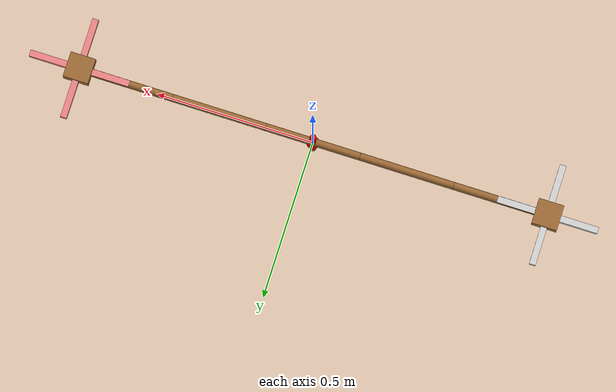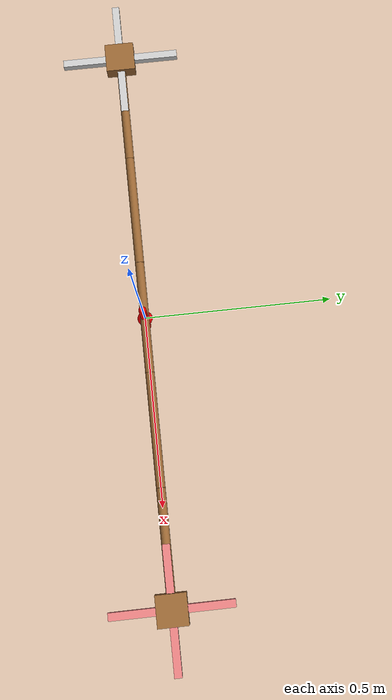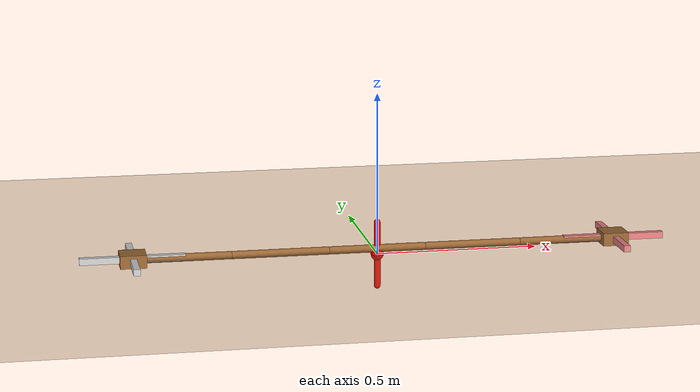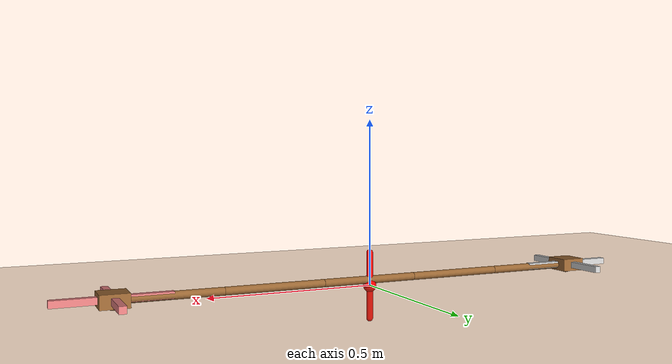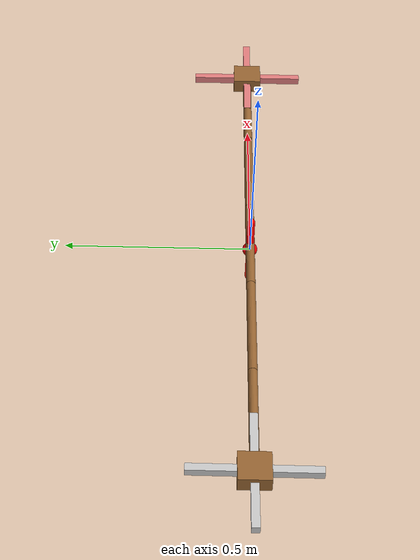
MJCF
<?xml version="1.0" encoding="utf-8"?>
<mujoco model="two_drones_flexible_bar_balljoints">

  <compiler angle="radian"/>

  <option timestep="0.001"
          gravity="0 0 -9.81"
          integrator="implicitfast"
          solver="Newton"
          iterations="50"
          tolerance="1e-9"/>

  <default>
    <joint damping="0.15" limited="false"/>
    <geom contype="0" conaffinity="0" rgba="0.6 0.4 0.2 1"/>
    <site size="0.01" rgba="1 1 0 0.5"/>

    <default class="spring_hinge">
      <!-- Para barra horizontal (alineada con eje X):
           flexión en plano XZ  -> eje Y
           flexión en plano XY  -> eje Z -->
      <joint type="hinge" stiffness="4" damping="0.15" limited="false" armature="0.0001"/>
    </default>
  </default>

  <asset>
    <texture type="skybox" builtin="gradient"
             rgb1="0.85 0.92 1.0" rgb2="0.18 0.28 0.55"
             width="512" height="512"/>
    <texture name="tex_floor" type="2d" builtin="checker"
             rgb1="0.72 0.72 0.72" rgb2="0.88 0.88 0.88"
             width="512" height="512"/>

    <material name="mat_floor"   texture="tex_floor" texrepeat="8 8" reflectance="0.50" shininess="0.4"/>
    <material name="mat_segment" rgba="0.65 0.42 0.18 1" shininess="0.4"/>
    <material name="mat_joint"   rgba="0.92 0.92 0.92 1" shininess="0.7"/>
    <material name="mat_socket"  rgba="0.95 0.75 0.10 1" shininess="1.0"/>
    <material name="MatDroneA"   rgba="0.18 0.18 0.18 1" shininess="0.9"/>
    <material name="MatDroneB"   rgba="0.60 0.10 0.10 1" shininess="0.9"/>
  </asset>

  <worldbody>
    <light name="ambient_light" directional="false"
           pos="0 0 5" dir="0 0 -1"
           diffuse="0.6 0.6 0.6" specular="0.2 0.2 0.2" castshadow="false"/>
    <light name="sun" directional="true"
           pos="2 2 4" dir="-0.5 -0.5 -1"
           diffuse="0.9 0.9 0.85" specular="0.4 0.4 0.4" castshadow="true"/>

    <geom name="floor" type="plane" size="6 6 0.1" material="mat_floor" contype="1" conaffinity="2"/>

    <!-- Máscara de colisión:
         - piso:    contype=1, conaffinity=2
         - sólidos: contype=2, conaffinity=1
         Así, drones y barra colisionan con el piso, pero no entre sí. -->

    <!-- BARRA FLEXIBLE: longitud total = 1.50 m -->
    <body name="seg1" pos="-0.75 0 0.018">
      <joint name="seg1_free" type="free"/>

      <site name="site_bar_A" pos="0 0 0" size="0.01" rgba="1 1 0 1"/>
      <geom name="g_j0" type="sphere" size="0.012" pos="0 0 0"
            material="mat_joint" mass="0.001" contype="2" conaffinity="1"/>
      <geom name="g_seg1" type="cylinder" size="0.012 0.15" pos="0.15 0 0"
            euler="0 1.57079632679 0"
            material="mat_segment" mass="0.10112" contype="2" conaffinity="1"/>
      <geom name="g_j1" type="sphere" size="0.012" pos="0.30 0 0"
            material="mat_joint" mass="0.001" contype="2" conaffinity="1"/>

      <body name="seg2" pos="0.30 0 0">
        <joint name="j12_ry" class="spring_hinge" axis="0 1 0"/>
        <joint name="j12_rz" class="spring_hinge" axis="0 0 1"/>
        <geom name="g_seg2" type="cylinder" size="0.012 0.15" pos="0.15 0 0"
              euler="0 1.57079632679 0"
              material="mat_segment" mass="0.10112" contype="2" conaffinity="1"/>
        <geom name="g_j2" type="sphere" size="0.012" pos="0.30 0 0"
              material="mat_joint" mass="0.001" contype="2" conaffinity="1"/>

        <body name="seg3" pos="0.30 0 0">
          <joint name="j23_ry" class="spring_hinge" axis="0 1 0"/>
          <joint name="j23_rz" class="spring_hinge" axis="0 0 1"/>
          <geom name="g_seg3" type="cylinder" size="0.012 0.15" pos="0.15 0 0"
                euler="0 1.57079632679 0"
                material="mat_segment" mass="0.10112" contype="2" conaffinity="1"/>
          <geom name="g_j3" type="sphere" size="0.012" pos="0.30 0 0"
                material="mat_joint" mass="0.001" contype="2" conaffinity="1"/>

          <body name="seg4" pos="0.30 0 0">
            <joint name="j34_ry" class="spring_hinge" axis="0 1 0"/>
            <joint name="j34_rz" class="spring_hinge" axis="0 0 1"/>
            <geom name="g_seg4" type="cylinder" size="0.012 0.15" pos="0.15 0 0"
                  euler="0 1.57079632679 0"
                  material="mat_segment" mass="0.10112" contype="2" conaffinity="1"/>
            <geom name="g_j4" type="sphere" size="0.012" pos="0.30 0 0"
                  material="mat_joint" mass="0.001" contype="2" conaffinity="1"/>

            <body name="seg5" pos="0.30 0 0">
              <joint name="j45_ry" class="spring_hinge" axis="0 1 0"/>
              <joint name="j45_rz" class="spring_hinge" axis="0 0 1"/>
              <geom name="g_seg5" type="cylinder" size="0.012 0.15" pos="0.15 0 0"
                    euler="0 1.57079632679 0"
                    material="mat_segment" mass="0.10112" contype="2" conaffinity="1"/>
              <geom name="g_j5" type="sphere" size="0.012" pos="0.30 0 0"
                    material="mat_joint" mass="0.001" contype="2" conaffinity="1"/>

              <geom name="g_socket_B" type="sphere" size="0.022" pos="0.30 0 0"
                    material="mat_socket" contype="0" conaffinity="0" mass="0"/>
              <site name="site_bar_B" pos="0.30 0 0" size="0.01" rgba="1 1 0 1"/>
            </body>
          </body>
        </body>
      </body>
    </body>

    <!-- DRONE A: izquierda -->
    <body name="drone_A" pos="-0.75 0 0.02">
      <joint name="drone_A_free" type="free"/>

      <geom name="drone_A_body" type="box" size="0.04 0.04 0.02"
            material="MatDroneA" mass="0.30" contype="2" conaffinity="1"/>
      <geom name="g_socket_A" type="sphere" size="0.022" pos="0 0 -0.008"
            material="mat_socket" contype="0" conaffinity="0" mass="0"/>

      <site name="com_site_A" pos="0 0 0" size="0.005" rgba="1 0.5 0 1"/>
      <site name="site_drone_A_joint" pos="0 0 -0.008" size="0.01" rgba="0 1 1 1"/>

      <geom name="arm_A_xp" type="box" pos=" 0.10 0 0" size="0.06 0.01 0.01"
            rgba="0.8 0.8 0.8 1" mass="0.02" contype="2" conaffinity="1"/>
      <geom name="arm_A_xn" type="box" pos="-0.10 0 0" size="0.06 0.01 0.01"
            rgba="0.8 0.8 0.8 1" mass="0.02" contype="2" conaffinity="1"/>
      <geom name="arm_A_yp" type="box" pos="0  0.10 0" size="0.01 0.06 0.01"
            rgba="0.8 0.8 0.8 1" mass="0.02" contype="2" conaffinity="1"/>
      <geom name="arm_A_yn" type="box" pos="0 -0.10 0" size="0.01 0.06 0.01"
            rgba="0.8 0.8 0.8 1" mass="0.02" contype="2" conaffinity="1"/>
    </body>

    <!-- DRONE B: derecha -->
    <body name="drone_B" pos="0.75 0 0.02">
      <joint name="drone_B_free" type="free"/>

      <geom name="drone_B_body" type="box" size="0.04 0.04 0.02"
            material="MatDroneB" mass="0.30" contype="2" conaffinity="1"/>
      <geom name="g_socket_B2" type="sphere" size="0.022" pos="-0 0 -0.008"
            material="mat_socket" contype="0" conaffinity="0" mass="0"/>

      <site name="com_site_B" pos="0 0 0" size="0.005" rgba="0 0.5 1 1"/>
      <site name="site_drone_B_joint" pos="0 0 -0.008" size="0.01" rgba="0 1 1 1"/>

      <geom name="arm_B_xp" type="box" pos=" 0.10 0 0" size="0.06 0.01 0.01"
            rgba="0.9 0.5 0.5 1" mass="0.02" contype="2" conaffinity="1"/>
      <geom name="arm_B_xn" type="box" pos="-0.10 0 0" size="0.06 0.01 0.01"
            rgba="0.9 0.5 0.5 1" mass="0.02" contype="2" conaffinity="1"/>
      <geom name="arm_B_yp" type="box" pos="0  0.10 0" size="0.01 0.06 0.01"
            rgba="0.9 0.5 0.5 1" mass="0.02" contype="2" conaffinity="1"/>
      <geom name="arm_B_yn" type="box" pos="0 -0.10 0" size="0.01 0.06 0.01"
            rgba="0.9 0.5 0.5 1" mass="0.02" contype="2" conaffinity="1"/>
    </body>

        <!-- ARROW/MARKER DRONE 1 -->
    <!-- Flecha mocap roja: F_des -->
    <body name="force_arrow_1" mocap="true" pos="0 0 0">
      <geom name="force_geom_1" type="capsule" size="0.01 0.10"
            rgba="1 0 0 1" contype="0" conaffinity="0" mass="0"/>
    </body>

    <!-- Flecha mocap azul: F estimado -->
    <body name="force_arrow_2" mocap="true" pos="0 0 0">
      <geom name="force_geom_2" type="capsule" size="0.01 0.10"
            rgba="0 0 1 1" contype="0" conaffinity="0" mass="0"/>
    </body>

    <!-- Esfera mocap -->
    <body name="point_marker_1" mocap="true" pos="0 0 0">
      <geom name="point_geom_1" type="sphere" size="0.02"
            rgba="1 0 0 1" contype="0" conaffinity="0" mass="0"/>
    </body>

    <!-- ARROW/MARKER DRONE 2 -->
    <!-- Flecha mocap roja: F_des -->
    <body name="force_arrow_3" mocap="true" pos="0 0 0">
      <geom name="force_geom_3" type="capsule" size="0.01 0.10"
            rgba="1 0 0 1" contype="0" conaffinity="0" mass="0"/>
    </body>

    <!-- Flecha mocap azul: F estimado -->
    <body name="force_arrow_4" mocap="true" pos="0 0 0">
      <geom name="force_geom_4" type="capsule" size="0.01 0.10"
            rgba="0 0 1 1" contype="0" conaffinity="0" mass="0"/>
    </body>

    <!-- Esfera mocap -->
    <body name="point_marker_2" mocap="true" pos="0 0 0">
      <geom name="point_geom_2" type="sphere" size="0.02"
            rgba="1 0.5 0 1" contype="0" conaffinity="0" mass="0"/>
    </body>

  </worldbody>

  <!-- RÓTULAS: connect usando sites -->
  <equality>
    <connect name="ball_A"
             site1="site_drone_A_joint"
             site2="site_bar_A"
             solimp="0.9 0.99 0.001"
             solref="0.01 1"/>

    <connect name="ball_B"
             site1="site_drone_B_joint"
             site2="site_bar_B"
             solimp="0.9 0.99 0.001"
             solref="0.01 1"/>
  </equality>

  <actuator>
    <!-- Drone A -->
    <general name="uA1_thrust" site="com_site_A" ctrllimited="true" ctrlrange="0 10"     gear="0 0 1  0 0 0"/>
    <general name="uA2_tau_x"  site="com_site_A" ctrllimited="true" ctrlrange="-1 1"     gear="0 0 0  1 0 0"/>
    <general name="uA3_tau_y"  site="com_site_A" ctrllimited="true" ctrlrange="-1 1"     gear="0 0 0  0 1 0"/>
    <general name="uA4_tau_z"  site="com_site_A" ctrllimited="true" ctrlrange="-0.2 0.2" gear="0 0 0  0 0 1"/>

    <!-- Drone B -->
    <general name="uB1_thrust" site="com_site_B" ctrllimited="true" ctrlrange="0 10"     gear="0 0 1  0 0 0"/>
    <general name="uB2_tau_x"  site="com_site_B" ctrllimited="true" ctrlrange="-1 1"     gear="0 0 0  1 0 0"/>
    <general name="uB3_tau_y"  site="com_site_B" ctrllimited="true" ctrlrange="-1 1"     gear="0 0 0  0 1 0"/>
    <general name="uB4_tau_z"  site="com_site_B" ctrllimited="true" ctrlrange="-0.2 0.2" gear="0 0 0  0 0 1"/>
  </actuator>

  <sensor>
    <framepos    name="pos_A"    objtype="body" objname="drone_A"/>
    <framequat   name="quat_A"   objtype="body" objname="drone_A"/>
    <framelinvel name="linvel_A" objtype="body" objname="drone_A"/>
    <frameangvel name="rotvel_A" objtype="body" objname="drone_A"/>

    <framepos    name="pos_B"    objtype="body" objname="drone_B"/>
    <framequat   name="quat_B"   objtype="body" objname="drone_B"/>
    <framelinvel name="linvel_B" objtype="body" objname="drone_B"/>
    <frameangvel name="rotvel_B" objtype="body" objname="drone_B"/>

    <jointpos name="s_j12_ry" joint="j12_ry"/>
    <jointpos name="s_j12_rz" joint="j12_rz"/>
    <jointpos name="s_j23_ry" joint="j23_ry"/>
    <jointpos name="s_j23_rz" joint="j23_rz"/>
    <jointpos name="s_j34_ry" joint="j34_ry"/>
    <jointpos name="s_j34_rz" joint="j34_rz"/>
    <jointpos name="s_j45_ry" joint="j45_ry"/>
    <jointpos name="s_j45_rz" joint="j45_rz"/>
  </sensor>

</mujoco>
